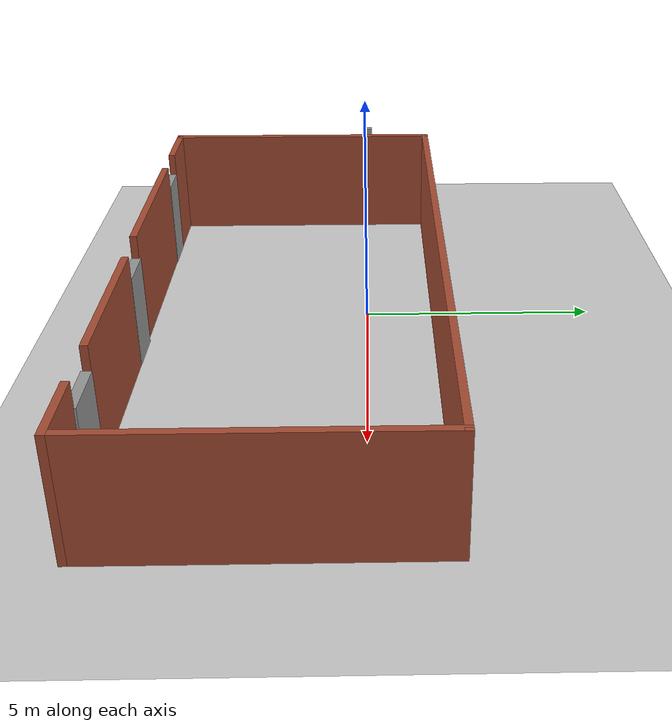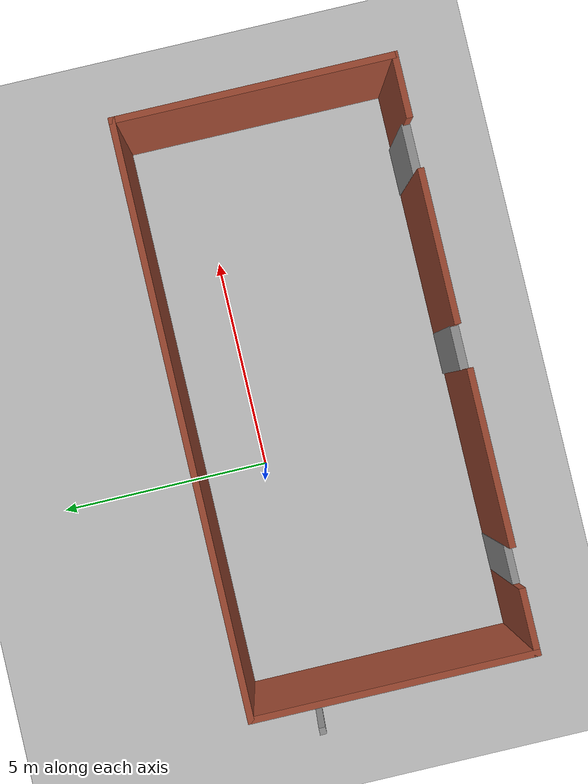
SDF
<sdf version="1.6">
 <world name="default">
  <light name="sun" type="directional">
   <pose>0 0 10 0 -0 0</pose>
   <diffuse>0.8 0.8 0.8 1</diffuse>
   <specular>0.1 0.1 0.1 1</specular>
   <attenuation>
    <range>1000</range>
    <constant>0.9</constant>
    <linear>0.01</linear>
    <quadratic>0.001</quadratic>
   </attenuation>
   <direction>-0.5 0.5 -1</direction>
  </light>
  <model name="ground_plane">
   <static>1</static>
   <link name="link">
    <collision name="collision">
     <geometry><plane><normal>0 0 1</normal><size>100 100</size></plane></geometry>
     <surface><friction><ode><mu>100</mu><mu2>50</mu2></ode></friction></surface>
    </collision>
    <visual name="visual">
     <cast_shadows>0</cast_shadows>
     <geometry><plane><normal>0 0 1</normal><size>100 100</size></plane></geometry>
     <material>
      <script><uri>file://media/materials/scripts/gazebo.material</uri><name>Gazebo/Grey</name></script>
     </material>
    </visual>
   </link>
  </model>
  <gravity>0 0 -9.8</gravity>
  <magnetic_field>6e-06 2.3e-05 -4.2e-05</magnetic_field>
  <atmosphere type="adiabatic"/>
  <physics name="default_physics" default="0" type="ode">
   <max_step_size>0.001</max_step_size>
   <real_time_factor>1</real_time_factor>
   <real_time_update_rate>1000</real_time_update_rate>
  </physics>
  <scene><ambient>0.4 0.4 0.4 1</ambient><background>0.7 0.7 0.7 1</background><shadows>1</shadows></scene>
  <spherical_coordinates>
   <surface_model>EARTH_WGS84</surface_model>
   <latitude_deg>0</latitude_deg>
   <longitude_deg>0</longitude_deg>
   <elevation>0</elevation>
   <heading_deg>0</heading_deg>
  </spherical_coordinates>
  <model name="room">
   <pose>1.2305 -1.64691 0 0 -0 0</pose>
   <link name="Door_3">
    <collision name="Door_3_Collision">
     <geometry><box><size>0.9 0.17 2</size></box></geometry>
     <pose>0 0 1 0 -0 0</pose>
    </collision>
    <visual name="Door_3_Visual">
     <pose>0 0 1 0 -0 0</pose>
     <geometry><box><size>0.9 0.17 2</size></box></geometry>
     <material>
      <script><uri>file://media/materials/scripts/gazebo.material</uri><name>Gazebo/Grey</name></script>
     </material>
    </visual>
    <pose>-4.51793 -3.17912 0 0 -0 0</pose>
   </link>
   <link name="Door_4">
    <collision name="Door_4_Collision">
     <geometry><box><size>1.01178 0.2 2</size></box></geometry>
     <pose>0 0 1 0 -0 0</pose>
    </collision>
    <visual name="Door_4_Visual">
     <pose>0 0 1 0 -0 0</pose>
     <geometry><box><size>1.01178 0.2 2</size></box></geometry>
     <material>
      <script><uri>file://media/materials/scripts/gazebo.material</uri><name>Gazebo/Grey</name></script>
     </material>
    </visual>
    <pose>0.422648 -3.16589 0 0 -0 0</pose>
   </link>
   <link name="Door_5">
    <collision name="Door_5_Collision">
     <geometry><box><size>1.15471 0.2 2</size></box></geometry>
     <pose>0 0 1 0 -0 0</pose>
    </collision>
    <visual name="Door_5_Visual">
     <pose>0 0 1 0 -0 0</pose>
     <geometry><box><size>1.15471 0.2 2</size></box></geometry>
     <material>
      <script><uri>file://media/materials/scripts/gazebo.material</uri><name>Gazebo/Grey</name></script>
     </material>
    </visual>
    <pose>4.9917 -3.15612 0 0 -0 0</pose>
   </link>
   <link name="Wall_14">
    <collision name="Wall_14_Collision">
     <geometry><box><size>6.5 0.15 2.5</size></box></geometry>
     <pose>0 0 1.25 0 -0 0</pose>
    </collision>
    <visual name="Wall_14_Visual">
     <pose>0 0 1.25 0 -0 0</pose>
     <geometry><box><size>6.5 0.15 2.5</size></box></geometry>
     <material>
      <script><uri>file://media/materials/scripts/gazebo.material</uri><name>Gazebo/Bricks</name></script>
      <ambient>1 0.764706 0.305882 1</ambient>
     </material>
    </visual>
    <pose>-6.3905 0.004115 0 0 -0 1.5708</pose>
   </link>
   <link name="Wall_2">
    <collision name="Wall_2_Collision">
     <geometry><box><size>0.15 0.15 2.5</size></box></geometry>
     <pose>0 0 1.25 0 -0 0</pose>
    </collision>
    <visual name="Wall_2_Visual">
     <pose>0 0 1.25 0 -0 0</pose>
     <geometry><box><size>0.15 0.15 2.5</size></box></geometry>
     <material>
      <script><uri>file://media/materials/scripts/gazebo.material</uri><name>Gazebo/Grey</name></script>
      <ambient>1 1 1 1</ambient>
     </material>
    </visual>
    <pose>-6.9595 1.72212 0 0 -0 0</pose>
   </link>
   <link name="Wall_20">
    <collision name="Wall_20_Collision">
     <geometry><box><size>1.5 0.15 2.5</size></box></geometry>
     <pose>0 0 1.25 0 -0 0</pose>
    </collision>
    <visual name="Wall_20_Visual">
     <pose>0 0 1.25 0 -0 0</pose>
     <geometry><box><size>1.5 0.15 2.5</size></box></geometry>
     <material>
      <script><uri>file://media/materials/scripts/gazebo.material</uri><name>Gazebo/Bricks</name></script>
      <ambient>1 1 1 1</ambient>
     </material>
    </visual>
    <pose>-5.7155 -3.17089 0 0 -0 0</pose>
   </link>
   <link name="Wall_22">
    <collision name="Wall_22_Collision">
     <geometry><box><size>4 0.15 2.5</size></box></geometry>
     <pose>0 0 1.25 0 -0 0</pose>
    </collision>
    <visual name="Wall_22_Visual">
     <pose>0 0 1.25 0 -0 0</pose>
     <geometry><box><size>4 0.15 2.5</size></box></geometry>
     <material>
      <script><uri>file://media/materials/scripts/gazebo.material</uri><name>Gazebo/Bricks</name></script>
      <ambient>1 1 1 1</ambient>
     </material>
    </visual>
    <pose>-2.07543 -3.17912 0 0 -0 0</pose>
   </link>
   <link name="Wall_24">
    <collision name="Wall_24_Collision">
     <geometry><box><size>3.5 0.15 2.5</size></box></geometry>
     <pose>0 0 1.25 0 -0 0</pose>
    </collision>
    <visual name="Wall_24_Visual">
     <pose>0 0 1.25 0 -0 0</pose>
     <geometry><box><size>3.5 0.15 2.5</size></box></geometry>
     <material>
      <script><uri>file://media/materials/scripts/gazebo.material</uri><name>Gazebo/Bricks</name></script>
      <ambient>1 1 1 1</ambient>
     </material>
    </visual>
    <pose>2.66138 -3.1465 0 0 -0 0</pose>
   </link>
   <link name="Wall_29">
    <collision name="Wall_29_Collision">
     <geometry><box><size>1.5 0.15 2.5</size></box></geometry>
     <pose>0 0 1.25 0 -0 0</pose>
    </collision>
    <visual name="Wall_29_Visual">
     <pose>0 0 1.25 0 -0 0</pose>
     <geometry><box><size>1.5 0.15 2.5</size></box></geometry>
     <material>
      <script><uri>file://media/materials/scripts/gazebo.material</uri><name>Gazebo/Bricks</name></script>
      <ambient>1 1 1 1</ambient>
     </material>
    </visual>
    <pose>6.2845 -3.17089 0 0 -0 3.14159</pose>
   </link>
   <link name="Wall_4">
    <collision name="Wall_4_Collision">
     <geometry><box><size>13.5 0.15 2.5</size></box></geometry>
     <pose>0 0 1.25 0 -0 0</pose>
    </collision>
    <visual name="Wall_4_Visual">
     <pose>0 0 1.25 0 -0 0</pose>
     <geometry><box><size>13.5 0.15 2.5</size></box></geometry>
     <material>
      <script><uri>file://media/materials/scripts/gazebo.material</uri><name>Gazebo/Bricks</name></script>
      <ambient>1 0.764706 0.305882 1</ambient>
     </material>
    </visual>
    <pose>0.2845 3.17911 0 0 -0 0</pose>
   </link>
   <link name="Wall_5">
    <collision name="Wall_5_Collision">
     <geometry><box><size>6.5 0.15 2.5</size></box></geometry>
     <pose>0 0 1.25 0 -0 0</pose>
    </collision>
    <visual name="Wall_5_Visual">
     <pose>0 0 1.25 0 -0 0</pose>
     <geometry><box><size>6.5 0.15 2.5</size></box></geometry>
     <material>
      <script><uri>file://media/materials/scripts/gazebo.material</uri><name>Gazebo/Bricks</name></script>
      <ambient>1 0.764706 0.305882 1</ambient>
     </material>
    </visual>
    <pose>6.9595 0.004115 0 0 0 -1.5708</pose>
   </link>
   <static>1</static>
  </model>
 </world>
</sdf>
